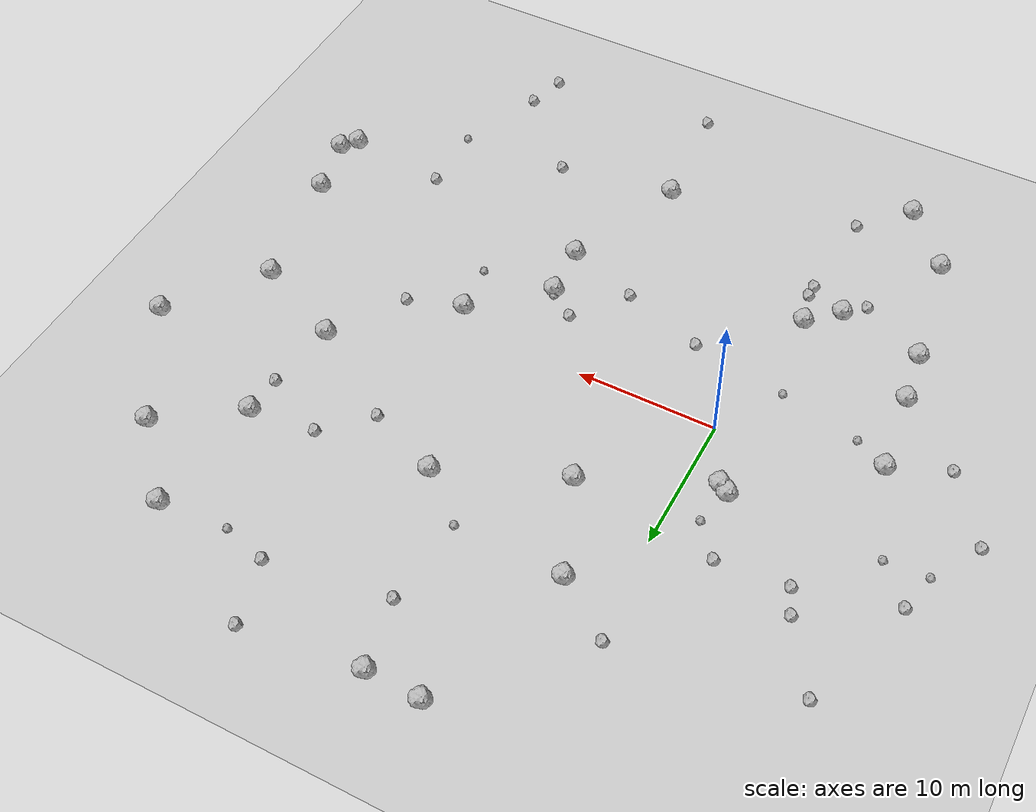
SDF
<sdf version="1.6">
 <world name="default">
  <include><uri>model://custom_ground</uri></include>
  <include><uri>model://sun</uri></include>
  <model name="rock1_0_0">
   <include><uri>model://rock1</uri><pose>-11.043193648731185 -2.0962077676405 0.5 0 0 0</pose></include>
  </model>
  <model name="rock1_0_1">
   <include><uri>model://rock1</uri><pose>35.59353807252119 -12.455169615343312 0.5 0 0 0</pose></include>
  </model>
  <model name="rock1_0_2">
   <include><uri>model://rock1</uri><pose>7.004736959455823 26.155036196943975 0.5 0 0 0</pose></include>
  </model>
  <model name="rock1_0_3">
   <include><uri>model://rock1</uri><pose>-4.830062165430748 -25.010936530134387 0.5 0 0 0</pose></include>
  </model>
  <model name="rock1_0_4">
   <include><uri>model://rock1</uri><pose>15.091161657603472 -5.873749004631957 0.5 0 0 0</pose></include>
  </model>
  <model name="rock1_0_5">
   <include><uri>model://rock1</uri><pose>-3.788531161545361 -13.311992575420327 0.5 0 0 0</pose></include>
  </model>
  <model name="rock1_0_6">
   <include><uri>model://rock1</uri><pose>-1.6683421701841255 -11.352003723324572 0.5 0 0 0</pose></include>
  </model>
  <model name="rock1_0_7">
   <include><uri>model://rock1</uri><pose>28.9095089700509 21.928321739848144 0.5 0 0 0</pose></include>
  </model>
  <model name="rock1_0_8">
   <include><uri>model://rock1</uri><pose>33.590924979391055 16.92299865013758 0.5 0 0 0</pose></include>
  </model>
  <model name="rock1_0_9">
   <include><uri>model://rock1</uri><pose>6.379599427411581 8.019061007117855 0.5 0 0 0</pose></include>
  </model>
  <model name="rock1_0_10">
   <include><uri>model://rock1</uri><pose>-9.847152490482408 -12.022939795775969 0.5 0 0 0</pose></include>
  </model>
  <model name="rock1_0_11">
   <include><uri>model://rock1</uri><pose>15.386468537609169 -9.767075057287833 0.5 0 0 0</pose></include>
  </model>
  <model name="rock1_0_12">
   <include><uri>model://rock1</uri><pose>-10.372069256988999 -8.080129531145573 0.5 0 0 0</pose></include>
  </model>
  <model name="rock1_0_13">
   <include><uri>model://rock1</uri><pose>14.966417661892194 11.727044940850618 0.5 0 0 0</pose></include>
  </model>
  <model name="rock1_0_14">
   <include><uri>model://rock1</uri><pose>11.91547099026318 -18.68268677444289 0.5 0 0 0</pose></include>
  </model>
  <model name="rock1_0_15">
   <include><uri>model://rock1</uri><pose>35.48495398177365 -7.070373716148779 0.5 0 0 0</pose></include>
  </model>
  <model name="rock1_0_16">
   <include><uri>model://rock1</uri><pose>-2.8411706771260583 4.559170402952127 0.5 0 0 0</pose></include>
  </model>
  <model name="rock1_0_17">
   <include><uri>model://rock1</uri><pose>38.730434626658166 8.55224182141523 0.5 0 0 0</pose></include>
  </model>
  <model name="rock1_0_18">
   <include><uri>model://rock1</uri><pose>3.5430061210683377 14.886961345189277 0.5 0 0 0</pose></include>
  </model>
  <model name="rock1_0_19">
   <include><uri>model://rock1</uri><pose>28.0213437419104 13.053415796749356 0.5 0 0 0</pose></include>
  </model>
  <model name="rock1_0_20">
   <include><uri>model://rock1</uri><pose>27.22222847097784 5.012601232344082 0.5 0 0 0</pose></include>
  </model>
  <model name="rock1_0_21">
   <include><uri>model://rock1</uri><pose>19.957481522521846 -1.4791337427152662 0.5 0 0 0</pose></include>
  </model>
  <model name="rock1_0_22">
   <include><uri>model://rock1</uri><pose>-2.14441062394004 4.1044256974413855 0.5 0 0 0</pose></include>
  </model>
  <model name="rock1_0_23">
   <include><uri>model://rock1</uri><pose>33.81743605116942 2.0255720460307245 0.5 0 0 0</pose></include>
  </model>
  <model name="rock1_0_24">
   <include><uri>model://rock1</uri><pose>36.50347858741454 -11.372680909043694 0.5 0 0 0</pose></include>
  </model>
  <model name="rock1_0_25">
   <include><uri>model://rock1</uri><pose>-8.431675755764921 -20.71212614425719 0.5 0 0 0</pose></include>
  </model>
  <model name="rock1_0_26">
   <include><uri>model://rock1</uri><pose>10.933469997494495 26.018235014002336 0.5 0 0 0</pose></include>
  </model>
  <model name="rock2_0_0">
   <include><uri>model://rock2</uri><pose>20.200436534535186 9.580724021214621 0.3 0 0 0</pose></include>
  </model>
  <model name="rock2_0_1">
   <include><uri>model://rock2</uri><pose>-4.1346171385672505 9.514864136735795 0.3 0 0 0</pose></include>
  </model>
  <model name="rock2_0_2">
   <include><uri>model://rock2</uri><pose>-15.799747396772348 7.29622076650287 0.3 0 0 0</pose></include>
  </model>
  <model name="rock2_0_3">
   <include><uri>model://rock2</uri><pose>-0.6195327107183317 17.81106846297294 0.3 0 0 0</pose></include>
  </model>
  <model name="rock2_0_4">
   <include><uri>model://rock2</uri><pose>-15.138236212089737 -3.8139051106960125 0.3 0 0 0</pose></include>
  </model>
  <model name="rock2_0_5">
   <include><uri>model://rock2</uri><pose>11.92590675113869 21.081544209414872 0.3 0 0 0</pose></include>
  </model>
  <model name="rock2_0_6">
   <include><uri>model://rock2</uri><pose>20.29967773837882 -17.208620503621816 0.3 0 0 0</pose></include>
  </model>
  <model name="rock2_0_7">
   <include><uri>model://rock2</uri><pose>-5.215382682406386 -14.532319930742023 0.3 0 0 0</pose></include>
  </model>
  <model name="rock2_0_8">
   <include><uri>model://rock2</uri><pose>12.964778334202613 -4.164993385564628 0.3 0 0 0</pose></include>
  </model>
  <model name="rock2_0_9">
   <include><uri>model://rock2</uri><pose>-1.1334327506293107 -13.711722882671566 0.3 0 0 0</pose></include>
  </model>
  <model name="rock2_0_10">
   <include><uri>model://rock2</uri><pose>-9.135359344005456 9.108198959215358 0.3 0 0 0</pose></include>
  </model>
  <model name="rock2_0_11">
   <include><uri>model://rock2</uri><pose>25.048200511157717 -25.752221188692697 0.3 0 0 0</pose></include>
  </model>
  <model name="rock2_0_12">
   <include><uri>model://rock2</uri><pose>28.14017477568928 -11.662689219534904 0.3 0 0 0</pose></include>
  </model>
  <model name="rock2_0_13">
   <include><uri>model://rock2</uri><pose>-9.891153156628768 10.96097742896373 0.3 0 0 0</pose></include>
  </model>
  <model name="rock2_0_14">
   <include><uri>model://rock2</uri><pose>12.58225717389901 -26.885769264374723 0.3 0 0 0</pose></include>
  </model>
  <model name="rock2_0_15">
   <include><uri>model://rock2</uri><pose>23.189603498708337 12.569901752445787 0.3 0 0 0</pose></include>
  </model>
  <model name="rock2_0_16">
   <include><uri>model://rock2</uri><pose>-1.6986790049198994 -21.69076378361192 0.3 0 0 0</pose></include>
  </model>
  <model name="rock2_0_17">
   <include><uri>model://rock2</uri><pose>27.866711755005568 10.228542457527979 0.3 0 0 0</pose></include>
  </model>
  <model name="rock2_0_18">
   <include><uri>model://rock2</uri><pose>-12.978802111335332 15.66014541744677 0.3 0 0 0</pose></include>
  </model>
  <model name="rock2_0_19">
   <include><uri>model://rock2</uri><pose>23.817987754932503 -0.18425884651627555 0.3 0 0 0</pose></include>
  </model>
  <model name="rock2_0_20">
   <include><uri>model://rock2</uri><pose>-1.1521543413473871 -14.666573984769451 0.3 0 0 0</pose></include>
  </model>
  <model name="rock2_0_21">
   <include><uri>model://rock2</uri><pose>10.040249922829055 -7.837775049696813 0.3 0 0 0</pose></include>
  </model>
  <model name="rock2_0_22">
   <include><uri>model://rock2</uri><pose>25.806691692220745 -22.892668244362227 0.3 0 0 0</pose></include>
  </model>
  <model name="rock2_0_23">
   <include><uri>model://rock2</uri><pose>19.36539544053754 27.03245134110516 0.3 0 0 0</pose></include>
  </model>
  <model name="rock2_0_24">
   <include><uri>model://rock2</uri><pose>4.04088231392889 -5.848069302282848 0.3 0 0 0</pose></include>
  </model>
  <model name="rock2_0_25">
   <include><uri>model://rock2</uri><pose>20.60392526861473 22.46269298165052 0.3 0 0 0</pose></include>
  </model>
  <model name="rock2_0_26">
   <include><uri>model://rock2</uri><pose>-18.564228769910642 1.0336384612223029 0.3 0 0 0</pose></include>
  </model>
  <model name="rock3_0_0">
   <include><uri>model://rock3</uri><pose>-13.447465586366969 4.6127901840038135 0.2 0 0 0</pose></include>
  </model>
  <model name="rock3_0_1">
   <include><uri>model://rock3</uri><pose>11.339170182414872 14.678979273207027 0.2 0 0 0</pose></include>
  </model>
  <model name="rock3_0_2">
   <include><uri>model://rock3</uri><pose>-16.493540497548963 4.4597305579063615 0.2 0 0 0</pose></include>
  </model>
  <model name="rock3_0_3">
   <include><uri>model://rock3</uri><pose>28.25898831957062 -16.755656233215028 0.2 0 0 0</pose></include>
  </model>
  <model name="rock3_0_4">
   <include><uri>model://rock3</uri><pose>-8.761477712335408 -3.36909785447855 0.2 0 0 0</pose></include>
  </model>
  <model name="rock3_0_5">
   <include><uri>model://rock3</uri><pose>23.814827243378033 21.521879860616885 0.2 0 0 0</pose></include>
  </model>
  <model name="rock3_0_6">
   <include><uri>model://rock3</uri><pose>20.337679171688507 -5.197568361773431 0.2 0 0 0</pose></include>
  </model>
  <model name="rock3_0_7">
   <include><uri>model://rock3</uri><pose>-2.2430786233445197 7.1684254015518505 0.2 0 0 0</pose></include>
  </model>
  <model name="rock3_0_8">
   <include><uri>model://rock3</uri><pose>-2.9363101195152232 -4.700438382475291 0.2 0 0 0</pose></include>
  </model>
  <model name="rock3_0_9">
   <include><uri>model://rock3</uri><pose>14.813896692297426 -5.436089904791931 0.2 0 0 0</pose></include>
  </model>
 </world>
</sdf>
